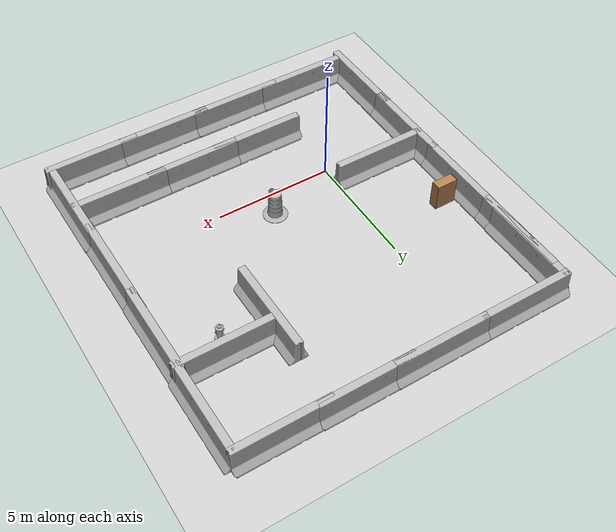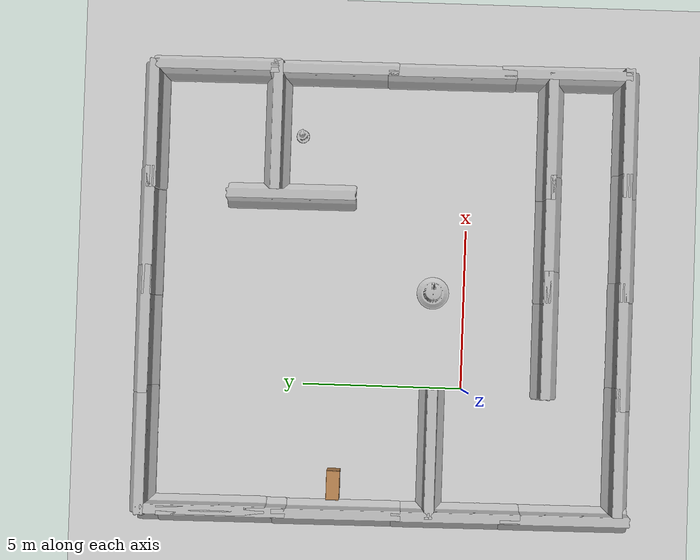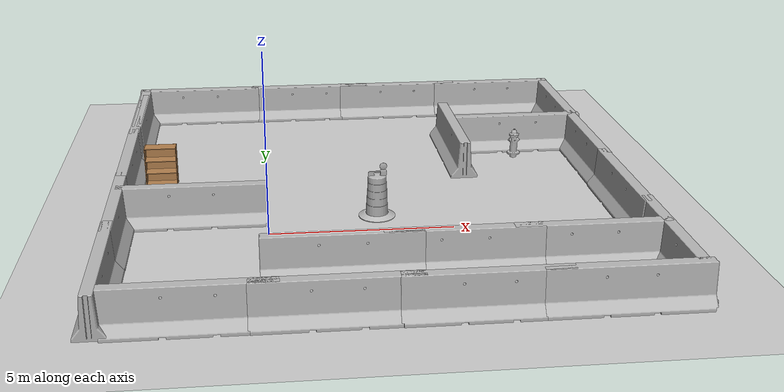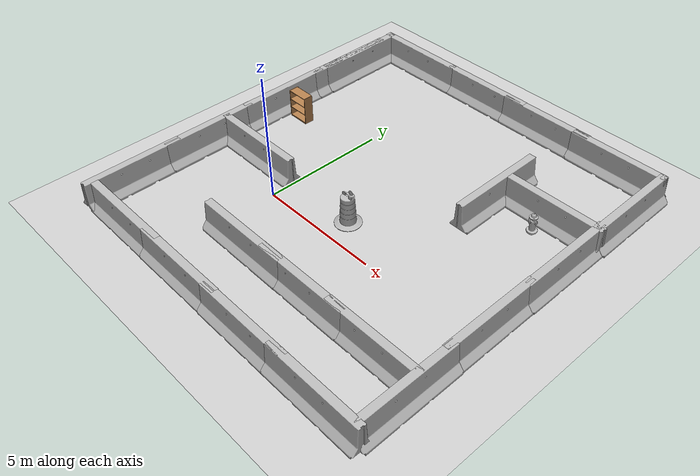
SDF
<sdf version="1.6">
 <world name="default">
  <light name="sun" type="directional">
   <pose>0 0 10 0 -0 0</pose>
   <diffuse>0.8 0.8 0.8 1</diffuse>
   <specular>0.1 0.1 0.1 1</specular>
   <attenuation>
    <range>1000</range>
    <constant>0.9</constant>
    <linear>0.01</linear>
    <quadratic>0.001</quadratic>
   </attenuation>
   <direction>-0.5 0.5 -1</direction>
  </light>
  <model name="ground_plane">
   <static>1</static>
   <link name="link">
    <collision name="collision">
     <geometry><plane><normal>0 0 1</normal><size>100 100</size></plane></geometry>
     <surface><friction><ode><mu>100</mu><mu2>50</mu2></ode></friction></surface>
    </collision>
    <visual name="visual">
     <cast_shadows>0</cast_shadows>
     <geometry><plane><normal>0 0 1</normal><size>100 100</size></plane></geometry>
     <material>
      <script><uri>file://media/materials/scripts/gazebo.material</uri><name>Gazebo/Grey</name></script>
     </material>
    </visual>
   </link>
  </model>
  <gravity>0 0 -9.8</gravity>
  <magnetic_field>6e-06 2.3e-05 -4.2e-05</magnetic_field>
  <atmosphere type="adiabatic"/>
  <physics name="default_physics" default="0" type="ode">
   <max_step_size>0.001</max_step_size>
   <real_time_factor>1</real_time_factor>
   <real_time_update_rate>1000</real_time_update_rate>
  </physics>
  <scene><ambient>0.4 0.4 0.4 1</ambient><background>0.7 0.7 0.7 1</background><shadows>1</shadows></scene>
  <spherical_coordinates>
   <surface_model>EARTH_WGS84</surface_model>
   <latitude_deg>0</latitude_deg>
   <longitude_deg>0</longitude_deg>
   <elevation>0</elevation>
   <heading_deg>0</heading_deg>
  </spherical_coordinates>
  <model name="jersey_barrier">
   <static>1</static>
   <link name="link">
    <visual name="visual">
     <geometry>
      <mesh><uri>model://jersey_barrier/meshes/jersey_barrier.dae</uri><scale>1 1 1</scale></mesh>
     </geometry>
    </visual>
    <collision name="upright">
     <pose>0 0 0.5715 0 -0 0</pose>
     <geometry><box><size>4.06542 0.3063 1.143</size></box></geometry>
    </collision>
    <collision name="base">
     <pose>0 0 0.032258 0 -0 0</pose>
     <geometry><box><size>4.06542 0.8107 0.064516</size></box></geometry>
    </collision>
    <collision name="base2">
     <pose>0 0 0.1 0 -0 0</pose>
     <geometry><box><size>4.06542 0.65 0.1</size></box></geometry>
    </collision>
    <collision name="base3">
     <pose>0 0 0.2 0 -0 0</pose>
     <geometry><box><size>4.06542 0.5 0.1</size></box></geometry>
    </collision>
    <collision name="left-angle">
     <pose>0 -0.224 0.2401 0.9 -0 0</pose>
     <geometry><box><size>4.06542 0.5 0.064516</size></box></geometry>
    </collision>
    <collision name="right-angle">
     <pose>0 0.224 0.2401 -0.9 0 0</pose>
     <geometry><box><size>4.06542 0.5 0.064516</size></box></geometry>
    </collision>
   </link>
   <pose>8.16618 -4.95482 0 0 -0 0</pose>
  </model>
  <model name="jersey_barrier_clone">
   <static>1</static>
   <link name="link">
    <visual name="visual">
     <geometry>
      <mesh><uri>model://jersey_barrier/meshes/jersey_barrier.dae</uri><scale>1 1 1</scale></mesh>
     </geometry>
    </visual>
    <collision name="upright">
     <pose>0 0 0.5715 0 -0 0</pose>
     <geometry><box><size>4.06542 0.3063 1.143</size></box></geometry>
    </collision>
    <collision name="base">
     <pose>0 0 0.032258 0 -0 0</pose>
     <geometry><box><size>4.06542 0.8107 0.064516</size></box></geometry>
    </collision>
    <collision name="base2">
     <pose>0 0 0.1 0 -0 0</pose>
     <geometry><box><size>4.06542 0.65 0.1</size></box></geometry>
    </collision>
    <collision name="base3">
     <pose>0 0 0.2 0 -0 0</pose>
     <geometry><box><size>4.06542 0.5 0.1</size></box></geometry>
    </collision>
    <collision name="left-angle">
     <pose>0 -0.224 0.2401 0.9 -0 0</pose>
     <geometry><box><size>4.06542 0.5 0.064516</size></box></geometry>
    </collision>
    <collision name="right-angle">
     <pose>0 0.224 0.2401 -0.9 0 0</pose>
     <geometry><box><size>4.06542 0.5 0.064516</size></box></geometry>
    </collision>
   </link>
   <pose>4.89491 -4.95424 0 0 -0 0</pose>
  </model>
  <model name="jersey_barrier_clone_0">
   <static>1</static>
   <link name="link">
    <visual name="visual">
     <geometry>
      <mesh><uri>model://jersey_barrier/meshes/jersey_barrier.dae</uri><scale>1 1 1</scale></mesh>
     </geometry>
    </visual>
    <collision name="upright">
     <pose>0 0 0.5715 0 -0 0</pose>
     <geometry><box><size>4.06542 0.3063 1.143</size></box></geometry>
    </collision>
    <collision name="base">
     <pose>0 0 0.032258 0 -0 0</pose>
     <geometry><box><size>4.06542 0.8107 0.064516</size></box></geometry>
    </collision>
    <collision name="base2">
     <pose>0 0 0.1 0 -0 0</pose>
     <geometry><box><size>4.06542 0.65 0.1</size></box></geometry>
    </collision>
    <collision name="base3">
     <pose>0 0 0.2 0 -0 0</pose>
     <geometry><box><size>4.06542 0.5 0.1</size></box></geometry>
    </collision>
    <collision name="left-angle">
     <pose>0 -0.224 0.2401 0.9 -0 0</pose>
     <geometry><box><size>4.06542 0.5 0.064516</size></box></geometry>
    </collision>
    <collision name="right-angle">
     <pose>0 0.224 0.2401 -0.9 0 0</pose>
     <geometry><box><size>4.06542 0.5 0.064516</size></box></geometry>
    </collision>
   </link>
   <pose>1.47754 -4.93619 0 0 -0 0</pose>
  </model>
  <model name="jersey_barrier_clone_1">
   <static>1</static>
   <link name="link">
    <visual name="visual">
     <geometry>
      <mesh><uri>model://jersey_barrier/meshes/jersey_barrier.dae</uri><scale>1 1 1</scale></mesh>
     </geometry>
    </visual>
    <collision name="upright">
     <pose>0 0 0.5715 0 -0 0</pose>
     <geometry><box><size>4.06542 0.3063 1.143</size></box></geometry>
    </collision>
    <collision name="base">
     <pose>0 0 0.032258 0 -0 0</pose>
     <geometry><box><size>4.06542 0.8107 0.064516</size></box></geometry>
    </collision>
    <collision name="base2">
     <pose>0 0 0.1 0 -0 0</pose>
     <geometry><box><size>4.06542 0.65 0.1</size></box></geometry>
    </collision>
    <collision name="base3">
     <pose>0 0 0.2 0 -0 0</pose>
     <geometry><box><size>4.06542 0.5 0.1</size></box></geometry>
    </collision>
    <collision name="left-angle">
     <pose>0 -0.224 0.2401 0.9 -0 0</pose>
     <geometry><box><size>4.06542 0.5 0.064516</size></box></geometry>
    </collision>
    <collision name="right-angle">
     <pose>0 0.224 0.2401 -0.9 0 0</pose>
     <geometry><box><size>4.06542 0.5 0.064516</size></box></geometry>
    </collision>
   </link>
   <pose>-1.80757 -4.92551 0 0 -0 0</pose>
  </model>
  <model name="jersey_barrier_clone_2">
   <static>1</static>
   <link name="link">
    <visual name="visual">
     <geometry>
      <mesh><uri>model://jersey_barrier/meshes/jersey_barrier.dae</uri><scale>1 1 1</scale></mesh>
     </geometry>
    </visual>
    <collision name="upright">
     <pose>0 0 0.5715 0 -0 0</pose>
     <geometry><box><size>4.06542 0.3063 1.143</size></box></geometry>
    </collision>
    <collision name="base">
     <pose>0 0 0.032258 0 -0 0</pose>
     <geometry><box><size>4.06542 0.8107 0.064516</size></box></geometry>
    </collision>
    <collision name="base2">
     <pose>0 0 0.1 0 -0 0</pose>
     <geometry><box><size>4.06542 0.65 0.1</size></box></geometry>
    </collision>
    <collision name="base3">
     <pose>0 0 0.2 0 -0 0</pose>
     <geometry><box><size>4.06542 0.5 0.1</size></box></geometry>
    </collision>
    <collision name="left-angle">
     <pose>0 -0.224 0.2401 0.9 -0 0</pose>
     <geometry><box><size>4.06542 0.5 0.064516</size></box></geometry>
    </collision>
    <collision name="right-angle">
     <pose>0 0.224 0.2401 -0.9 0 0</pose>
     <geometry><box><size>4.06542 0.5 0.064516</size></box></geometry>
    </collision>
   </link>
   <pose>-3.97047 -3.2892 0 0 -0 1.57745</pose>
  </model>
  <model name="jersey_barrier_clone_2_clone">
   <static>1</static>
   <link name="link">
    <visual name="visual">
     <geometry>
      <mesh><uri>model://jersey_barrier/meshes/jersey_barrier.dae</uri><scale>1 1 1</scale></mesh>
     </geometry>
    </visual>
    <collision name="upright">
     <pose>0 0 0.5715 0 -0 0</pose>
     <geometry><box><size>4.06542 0.3063 1.143</size></box></geometry>
    </collision>
    <collision name="base">
     <pose>0 0 0.032258 0 -0 0</pose>
     <geometry><box><size>4.06542 0.8107 0.064516</size></box></geometry>
    </collision>
    <collision name="base2">
     <pose>0 0 0.1 0 -0 0</pose>
     <geometry><box><size>4.06542 0.65 0.1</size></box></geometry>
    </collision>
    <collision name="base3">
     <pose>0 0 0.2 0 -0 0</pose>
     <geometry><box><size>4.06542 0.5 0.1</size></box></geometry>
    </collision>
    <collision name="left-angle">
     <pose>0 -0.224 0.2401 0.9 -0 0</pose>
     <geometry><box><size>4.06542 0.5 0.064516</size></box></geometry>
    </collision>
    <collision name="right-angle">
     <pose>0 0.224 0.2401 -0.9 0 0</pose>
     <geometry><box><size>4.06542 0.5 0.064516</size></box></geometry>
    </collision>
   </link>
   <pose>-3.98398 0.096046 0 0 -0 1.57745</pose>
  </model>
  <model name="jersey_barrier_clone_2_clone_0">
   <static>1</static>
   <link name="link">
    <visual name="visual">
     <geometry>
      <mesh><uri>model://jersey_barrier/meshes/jersey_barrier.dae</uri><scale>1 1 1</scale></mesh>
     </geometry>
    </visual>
    <collision name="upright">
     <pose>0 0 0.5715 0 -0 0</pose>
     <geometry><box><size>4.06542 0.3063 1.143</size></box></geometry>
    </collision>
    <collision name="base">
     <pose>0 0 0.032258 0 -0 0</pose>
     <geometry><box><size>4.06542 0.8107 0.064516</size></box></geometry>
    </collision>
    <collision name="base2">
     <pose>0 0 0.1 0 -0 0</pose>
     <geometry><box><size>4.06542 0.65 0.1</size></box></geometry>
    </collision>
    <collision name="base3">
     <pose>0 0 0.2 0 -0 0</pose>
     <geometry><box><size>4.06542 0.5 0.1</size></box></geometry>
    </collision>
    <collision name="left-angle">
     <pose>0 -0.224 0.2401 0.9 -0 0</pose>
     <geometry><box><size>4.06542 0.5 0.064516</size></box></geometry>
    </collision>
    <collision name="right-angle">
     <pose>0 0.224 0.2401 -0.9 0 0</pose>
     <geometry><box><size>4.06542 0.5 0.064516</size></box></geometry>
    </collision>
   </link>
   <pose>-3.99854 3.81891 0 0 -0 1.57745</pose>
  </model>
  <model name="jersey_barrier_clone_2_clone_1">
   <static>1</static>
   <link name="link">
    <visual name="visual">
     <geometry>
      <mesh><uri>model://jersey_barrier/meshes/jersey_barrier.dae</uri><scale>1 1 1</scale></mesh>
     </geometry>
    </visual>
    <collision name="upright">
     <pose>0 0 0.5715 0 -0 0</pose>
     <geometry><box><size>4.06542 0.3063 1.143</size></box></geometry>
    </collision>
    <collision name="base">
     <pose>0 0 0.032258 0 -0 0</pose>
     <geometry><box><size>4.06542 0.8107 0.064516</size></box></geometry>
    </collision>
    <collision name="base2">
     <pose>0 0 0.1 0 -0 0</pose>
     <geometry><box><size>4.06542 0.65 0.1</size></box></geometry>
    </collision>
    <collision name="base3">
     <pose>0 0 0.2 0 -0 0</pose>
     <geometry><box><size>4.06542 0.5 0.1</size></box></geometry>
    </collision>
    <collision name="left-angle">
     <pose>0 -0.224 0.2401 0.9 -0 0</pose>
     <geometry><box><size>4.06542 0.5 0.064516</size></box></geometry>
    </collision>
    <collision name="right-angle">
     <pose>0 0.224 0.2401 -0.9 0 0</pose>
     <geometry><box><size>4.06542 0.5 0.064516</size></box></geometry>
    </collision>
   </link>
   <pose>-4.00487 7.39825 0 0 -0 1.57745</pose>
  </model>
  <model name="jersey_barrier_clone_2_clone_2">
   <static>1</static>
   <link name="link">
    <visual name="visual">
     <geometry>
      <mesh><uri>model://jersey_barrier/meshes/jersey_barrier.dae</uri><scale>1 1 1</scale></mesh>
     </geometry>
    </visual>
    <collision name="upright">
     <pose>0 0 0.5715 0 -0 0</pose>
     <geometry><box><size>4.06542 0.3063 1.143</size></box></geometry>
    </collision>
    <collision name="base">
     <pose>0 0 0.032258 0 -0 0</pose>
     <geometry><box><size>4.06542 0.8107 0.064516</size></box></geometry>
    </collision>
    <collision name="base2">
     <pose>0 0 0.1 0 -0 0</pose>
     <geometry><box><size>4.06542 0.65 0.1</size></box></geometry>
    </collision>
    <collision name="base3">
     <pose>0 0 0.2 0 -0 0</pose>
     <geometry><box><size>4.06542 0.5 0.1</size></box></geometry>
    </collision>
    <collision name="left-angle">
     <pose>0 -0.224 0.2401 0.9 -0 0</pose>
     <geometry><box><size>4.06542 0.5 0.064516</size></box></geometry>
    </collision>
    <collision name="right-angle">
     <pose>0 0.224 0.2401 -0.9 0 0</pose>
     <geometry><box><size>4.06542 0.5 0.064516</size></box></geometry>
    </collision>
   </link>
   <pose>-3.98448 8.04289 0 0 -0 1.57745</pose>
  </model>
  <model name="jersey_barrier_clone_1_clone">
   <static>1</static>
   <link name="link">
    <visual name="visual">
     <geometry>
      <mesh><uri>model://jersey_barrier/meshes/jersey_barrier.dae</uri><scale>1 1 1</scale></mesh>
     </geometry>
    </visual>
    <collision name="upright">
     <pose>0 0 0.5715 0 -0 0</pose>
     <geometry><box><size>4.06542 0.3063 1.143</size></box></geometry>
    </collision>
    <collision name="base">
     <pose>0 0 0.032258 0 -0 0</pose>
     <geometry><box><size>4.06542 0.8107 0.064516</size></box></geometry>
    </collision>
    <collision name="base2">
     <pose>0 0 0.1 0 -0 0</pose>
     <geometry><box><size>4.06542 0.65 0.1</size></box></geometry>
    </collision>
    <collision name="base3">
     <pose>0 0 0.2 0 -0 0</pose>
     <geometry><box><size>4.06542 0.5 0.1</size></box></geometry>
    </collision>
    <collision name="left-angle">
     <pose>0 -0.224 0.2401 0.9 -0 0</pose>
     <geometry><box><size>4.06542 0.5 0.064516</size></box></geometry>
    </collision>
    <collision name="right-angle">
     <pose>0 0.224 0.2401 -0.9 0 0</pose>
     <geometry><box><size>4.06542 0.5 0.064516</size></box></geometry>
    </collision>
   </link>
   <pose>-2.16451 9.94196 0 0 -0 0</pose>
  </model>
  <model name="jersey_barrier_clone_1_clone_0">
   <static>1</static>
   <link name="link">
    <visual name="visual">
     <geometry>
      <mesh><uri>model://jersey_barrier/meshes/jersey_barrier.dae</uri><scale>1 1 1</scale></mesh>
     </geometry>
    </visual>
    <collision name="upright">
     <pose>0 0 0.5715 0 -0 0</pose>
     <geometry><box><size>4.06542 0.3063 1.143</size></box></geometry>
    </collision>
    <collision name="base">
     <pose>0 0 0.032258 0 -0 0</pose>
     <geometry><box><size>4.06542 0.8107 0.064516</size></box></geometry>
    </collision>
    <collision name="base2">
     <pose>0 0 0.1 0 -0 0</pose>
     <geometry><box><size>4.06542 0.65 0.1</size></box></geometry>
    </collision>
    <collision name="base3">
     <pose>0 0 0.2 0 -0 0</pose>
     <geometry><box><size>4.06542 0.5 0.1</size></box></geometry>
    </collision>
    <collision name="left-angle">
     <pose>0 -0.224 0.2401 0.9 -0 0</pose>
     <geometry><box><size>4.06542 0.5 0.064516</size></box></geometry>
    </collision>
    <collision name="right-angle">
     <pose>0 0.224 0.2401 -0.9 0 0</pose>
     <geometry><box><size>4.06542 0.5 0.064516</size></box></geometry>
    </collision>
   </link>
   <pose>1.60091 9.94605 0 0 -0 0</pose>
  </model>
  <model name="jersey_barrier_clone_1_clone_1">
   <static>1</static>
   <link name="link">
    <visual name="visual">
     <geometry>
      <mesh><uri>model://jersey_barrier/meshes/jersey_barrier.dae</uri><scale>1 1 1</scale></mesh>
     </geometry>
    </visual>
    <collision name="upright">
     <pose>0 0 0.5715 0 -0 0</pose>
     <geometry><box><size>4.06542 0.3063 1.143</size></box></geometry>
    </collision>
    <collision name="base">
     <pose>0 0 0.032258 0 -0 0</pose>
     <geometry><box><size>4.06542 0.8107 0.064516</size></box></geometry>
    </collision>
    <collision name="base2">
     <pose>0 0 0.1 0 -0 0</pose>
     <geometry><box><size>4.06542 0.65 0.1</size></box></geometry>
    </collision>
    <collision name="base3">
     <pose>0 0 0.2 0 -0 0</pose>
     <geometry><box><size>4.06542 0.5 0.1</size></box></geometry>
    </collision>
    <collision name="left-angle">
     <pose>0 -0.224 0.2401 0.9 -0 0</pose>
     <geometry><box><size>4.06542 0.5 0.064516</size></box></geometry>
    </collision>
    <collision name="right-angle">
     <pose>0 0.224 0.2401 -0.9 0 0</pose>
     <geometry><box><size>4.06542 0.5 0.064516</size></box></geometry>
    </collision>
   </link>
   <pose>4.68435 9.936 0 0 -0 0</pose>
  </model>
  <model name="jersey_barrier_clone_1_clone_2">
   <static>1</static>
   <link name="link">
    <visual name="visual">
     <geometry>
      <mesh><uri>model://jersey_barrier/meshes/jersey_barrier.dae</uri><scale>1 1 1</scale></mesh>
     </geometry>
    </visual>
    <collision name="upright">
     <pose>0 0 0.5715 0 -0 0</pose>
     <geometry><box><size>4.06542 0.3063 1.143</size></box></geometry>
    </collision>
    <collision name="base">
     <pose>0 0 0.032258 0 -0 0</pose>
     <geometry><box><size>4.06542 0.8107 0.064516</size></box></geometry>
    </collision>
    <collision name="base2">
     <pose>0 0 0.1 0 -0 0</pose>
     <geometry><box><size>4.06542 0.65 0.1</size></box></geometry>
    </collision>
    <collision name="base3">
     <pose>0 0 0.2 0 -0 0</pose>
     <geometry><box><size>4.06542 0.5 0.1</size></box></geometry>
    </collision>
    <collision name="left-angle">
     <pose>0 -0.224 0.2401 0.9 -0 0</pose>
     <geometry><box><size>4.06542 0.5 0.064516</size></box></geometry>
    </collision>
    <collision name="right-angle">
     <pose>0 0.224 0.2401 -0.9 0 0</pose>
     <geometry><box><size>4.06542 0.5 0.064516</size></box></geometry>
    </collision>
   </link>
   <pose>8.02814 9.90978 0 0 -0 0</pose>
  </model>
  <model name="jersey_barrier_clone_2_clone_2_clone">
   <static>1</static>
   <link name="link">
    <visual name="visual">
     <geometry>
      <mesh><uri>model://jersey_barrier/meshes/jersey_barrier.dae</uri><scale>1 1 1</scale></mesh>
     </geometry>
    </visual>
    <collision name="upright">
     <pose>0 0 0.5715 0 -0 0</pose>
     <geometry><box><size>4.06542 0.3063 1.143</size></box></geometry>
    </collision>
    <collision name="base">
     <pose>0 0 0.032258 0 -0 0</pose>
     <geometry><box><size>4.06542 0.8107 0.064516</size></box></geometry>
    </collision>
    <collision name="base2">
     <pose>0 0 0.1 0 -0 0</pose>
     <geometry><box><size>4.06542 0.65 0.1</size></box></geometry>
    </collision>
    <collision name="base3">
     <pose>0 0 0.2 0 -0 0</pose>
     <geometry><box><size>4.06542 0.5 0.1</size></box></geometry>
    </collision>
    <collision name="left-angle">
     <pose>0 -0.224 0.2401 0.9 -0 0</pose>
     <geometry><box><size>4.06542 0.5 0.064516</size></box></geometry>
    </collision>
    <collision name="right-angle">
     <pose>0 0.224 0.2401 -0.9 0 0</pose>
     <geometry><box><size>4.06542 0.5 0.064516</size></box></geometry>
    </collision>
   </link>
   <pose>9.9019 8.01874 0 0 -0 1.57745</pose>
  </model>
  <model name="jersey_barrier_clone_2_clone_2_clone_0">
   <static>1</static>
   <link name="link">
    <visual name="visual">
     <geometry>
      <mesh><uri>model://jersey_barrier/meshes/jersey_barrier.dae</uri><scale>1 1 1</scale></mesh>
     </geometry>
    </visual>
    <collision name="upright">
     <pose>0 0 0.5715 0 -0 0</pose>
     <geometry><box><size>4.06542 0.3063 1.143</size></box></geometry>
    </collision>
    <collision name="base">
     <pose>0 0 0.032258 0 -0 0</pose>
     <geometry><box><size>4.06542 0.8107 0.064516</size></box></geometry>
    </collision>
    <collision name="base2">
     <pose>0 0 0.1 0 -0 0</pose>
     <geometry><box><size>4.06542 0.65 0.1</size></box></geometry>
    </collision>
    <collision name="base3">
     <pose>0 0 0.2 0 -0 0</pose>
     <geometry><box><size>4.06542 0.5 0.1</size></box></geometry>
    </collision>
    <collision name="left-angle">
     <pose>0 -0.224 0.2401 0.9 -0 0</pose>
     <geometry><box><size>4.06542 0.5 0.064516</size></box></geometry>
    </collision>
    <collision name="right-angle">
     <pose>0 0.224 0.2401 -0.9 0 0</pose>
     <geometry><box><size>4.06542 0.5 0.064516</size></box></geometry>
    </collision>
   </link>
   <pose>9.92134 -3.02383 0 0 -0 1.57745</pose>
  </model>
  <model name="jersey_barrier_clone_2_clone_2_clone_1">
   <static>1</static>
   <link name="link">
    <visual name="visual">
     <geometry>
      <mesh><uri>model://jersey_barrier/meshes/jersey_barrier.dae</uri><scale>1 1 1</scale></mesh>
     </geometry>
    </visual>
    <collision name="upright">
     <pose>0 0 0.5715 0 -0 0</pose>
     <geometry><box><size>4.06542 0.3063 1.143</size></box></geometry>
    </collision>
    <collision name="base">
     <pose>0 0 0.032258 0 -0 0</pose>
     <geometry><box><size>4.06542 0.8107 0.064516</size></box></geometry>
    </collision>
    <collision name="base2">
     <pose>0 0 0.1 0 -0 0</pose>
     <geometry><box><size>4.06542 0.65 0.1</size></box></geometry>
    </collision>
    <collision name="base3">
     <pose>0 0 0.2 0 -0 0</pose>
     <geometry><box><size>4.06542 0.5 0.1</size></box></geometry>
    </collision>
    <collision name="left-angle">
     <pose>0 -0.224 0.2401 0.9 -0 0</pose>
     <geometry><box><size>4.06542 0.5 0.064516</size></box></geometry>
    </collision>
    <collision name="right-angle">
     <pose>0 0.224 0.2401 -0.9 0 0</pose>
     <geometry><box><size>4.06542 0.5 0.064516</size></box></geometry>
    </collision>
   </link>
   <pose>9.87506 0.593608 0 0 -0 1.57745</pose>
  </model>
  <model name="jersey_barrier_clone_2_clone_2_clone_2">
   <static>1</static>
   <link name="link">
    <visual name="visual">
     <geometry>
      <mesh><uri>model://jersey_barrier/meshes/jersey_barrier.dae</uri><scale>1 1 1</scale></mesh>
     </geometry>
    </visual>
    <collision name="upright">
     <pose>0 0 0.5715 0 -0 0</pose>
     <geometry><box><size>4.06542 0.3063 1.143</size></box></geometry>
    </collision>
    <collision name="base">
     <pose>0 0 0.032258 0 -0 0</pose>
     <geometry><box><size>4.06542 0.8107 0.064516</size></box></geometry>
    </collision>
    <collision name="base2">
     <pose>0 0 0.1 0 -0 0</pose>
     <geometry><box><size>4.06542 0.65 0.1</size></box></geometry>
    </collision>
    <collision name="base3">
     <pose>0 0 0.2 0 -0 0</pose>
     <geometry><box><size>4.06542 0.5 0.1</size></box></geometry>
    </collision>
    <collision name="left-angle">
     <pose>0 -0.224 0.2401 0.9 -0 0</pose>
     <geometry><box><size>4.06542 0.5 0.064516</size></box></geometry>
    </collision>
    <collision name="right-angle">
     <pose>0 0.224 0.2401 -0.9 0 0</pose>
     <geometry><box><size>4.06542 0.5 0.064516</size></box></geometry>
    </collision>
   </link>
   <pose>9.87368 4.28235 0 0 -0 1.57745</pose>
  </model>
  <model name="jersey_barrier_clone_1_clone_2_clone">
   <static>1</static>
   <link name="link">
    <visual name="visual">
     <geometry>
      <mesh><uri>model://jersey_barrier/meshes/jersey_barrier.dae</uri><scale>1 1 1</scale></mesh>
     </geometry>
    </visual>
    <collision name="upright">
     <pose>0 0 0.5715 0 -0 0</pose>
     <geometry><box><size>4.06542 0.3063 1.143</size></box></geometry>
    </collision>
    <collision name="base">
     <pose>0 0 0.032258 0 -0 0</pose>
     <geometry><box><size>4.06542 0.8107 0.064516</size></box></geometry>
    </collision>
    <collision name="base2">
     <pose>0 0 0.1 0 -0 0</pose>
     <geometry><box><size>4.06542 0.65 0.1</size></box></geometry>
    </collision>
    <collision name="base3">
     <pose>0 0 0.2 0 -0 0</pose>
     <geometry><box><size>4.06542 0.5 0.1</size></box></geometry>
    </collision>
    <collision name="left-angle">
     <pose>0 -0.224 0.2401 0.9 -0 0</pose>
     <geometry><box><size>4.06542 0.5 0.064516</size></box></geometry>
    </collision>
    <collision name="right-angle">
     <pose>0 0.224 0.2401 -0.9 0 0</pose>
     <geometry><box><size>4.06542 0.5 0.064516</size></box></geometry>
    </collision>
   </link>
   <pose>8.02688 -2.57029 0 0 -0 0</pose>
  </model>
  <model name="jersey_barrier_clone_1_clone_2_clone_0">
   <static>1</static>
   <link name="link">
    <visual name="visual">
     <geometry>
      <mesh><uri>model://jersey_barrier/meshes/jersey_barrier.dae</uri><scale>1 1 1</scale></mesh>
     </geometry>
    </visual>
    <collision name="upright">
     <pose>0 0 0.5715 0 -0 0</pose>
     <geometry><box><size>4.06542 0.3063 1.143</size></box></geometry>
    </collision>
    <collision name="base">
     <pose>0 0 0.032258 0 -0 0</pose>
     <geometry><box><size>4.06542 0.8107 0.064516</size></box></geometry>
    </collision>
    <collision name="base2">
     <pose>0 0 0.1 0 -0 0</pose>
     <geometry><box><size>4.06542 0.65 0.1</size></box></geometry>
    </collision>
    <collision name="base3">
     <pose>0 0 0.2 0 -0 0</pose>
     <geometry><box><size>4.06542 0.5 0.1</size></box></geometry>
    </collision>
    <collision name="left-angle">
     <pose>0 -0.224 0.2401 0.9 -0 0</pose>
     <geometry><box><size>4.06542 0.5 0.064516</size></box></geometry>
    </collision>
    <collision name="right-angle">
     <pose>0 0.224 0.2401 -0.9 0 0</pose>
     <geometry><box><size>4.06542 0.5 0.064516</size></box></geometry>
    </collision>
   </link>
   <pose>4.77959 -2.57991 0 0 -0 0</pose>
  </model>
  <model name="jersey_barrier_clone_1_clone_2_clone_1">
   <static>1</static>
   <link name="link">
    <visual name="visual">
     <geometry>
      <mesh><uri>model://jersey_barrier/meshes/jersey_barrier.dae</uri><scale>1 1 1</scale></mesh>
     </geometry>
    </visual>
    <collision name="upright">
     <pose>0 0 0.5715 0 -0 0</pose>
     <geometry><box><size>4.06542 0.3063 1.143</size></box></geometry>
    </collision>
    <collision name="base">
     <pose>0 0 0.032258 0 -0 0</pose>
     <geometry><box><size>4.06542 0.8107 0.064516</size></box></geometry>
    </collision>
    <collision name="base2">
     <pose>0 0 0.1 0 -0 0</pose>
     <geometry><box><size>4.06542 0.65 0.1</size></box></geometry>
    </collision>
    <collision name="base3">
     <pose>0 0 0.2 0 -0 0</pose>
     <geometry><box><size>4.06542 0.5 0.1</size></box></geometry>
    </collision>
    <collision name="left-angle">
     <pose>0 -0.224 0.2401 0.9 -0 0</pose>
     <geometry><box><size>4.06542 0.5 0.064516</size></box></geometry>
    </collision>
    <collision name="right-angle">
     <pose>0 0.224 0.2401 -0.9 0 0</pose>
     <geometry><box><size>4.06542 0.5 0.064516</size></box></geometry>
    </collision>
   </link>
   <pose>1.78581 -2.58594 0 0 -0 0</pose>
  </model>
  <model name="jersey_barrier_clone_1_clone_2_clone_2">
   <static>1</static>
   <link name="link">
    <visual name="visual">
     <geometry>
      <mesh><uri>model://jersey_barrier/meshes/jersey_barrier.dae</uri><scale>1 1 1</scale></mesh>
     </geometry>
    </visual>
    <collision name="upright">
     <pose>0 0 0.5715 0 -0 0</pose>
     <geometry><box><size>4.06542 0.3063 1.143</size></box></geometry>
    </collision>
    <collision name="base">
     <pose>0 0 0.032258 0 -0 0</pose>
     <geometry><box><size>4.06542 0.8107 0.064516</size></box></geometry>
    </collision>
    <collision name="base2">
     <pose>0 0 0.1 0 -0 0</pose>
     <geometry><box><size>4.06542 0.65 0.1</size></box></geometry>
    </collision>
    <collision name="base3">
     <pose>0 0 0.2 0 -0 0</pose>
     <geometry><box><size>4.06542 0.5 0.1</size></box></geometry>
    </collision>
    <collision name="left-angle">
     <pose>0 -0.224 0.2401 0.9 -0 0</pose>
     <geometry><box><size>4.06542 0.5 0.064516</size></box></geometry>
    </collision>
    <collision name="right-angle">
     <pose>0 0.224 0.2401 -0.9 0 0</pose>
     <geometry><box><size>4.06542 0.5 0.064516</size></box></geometry>
    </collision>
   </link>
   <pose>8.0887 6.04476 0 0 -0 0</pose>
  </model>
  <model name="jersey_barrier_clone_2_clone_0_clone">
   <static>1</static>
   <link name="link">
    <visual name="visual">
     <geometry>
      <mesh><uri>model://jersey_barrier/meshes/jersey_barrier.dae</uri><scale>1 1 1</scale></mesh>
     </geometry>
    </visual>
    <collision name="upright">
     <pose>0 0 0.5715 0 -0 0</pose>
     <geometry><box><size>4.06542 0.3063 1.143</size></box></geometry>
    </collision>
    <collision name="base">
     <pose>0 0 0.032258 0 -0 0</pose>
     <geometry><box><size>4.06542 0.8107 0.064516</size></box></geometry>
    </collision>
    <collision name="base2">
     <pose>0 0 0.1 0 -0 0</pose>
     <geometry><box><size>4.06542 0.65 0.1</size></box></geometry>
    </collision>
    <collision name="base3">
     <pose>0 0 0.2 0 -0 0</pose>
     <geometry><box><size>4.06542 0.5 0.1</size></box></geometry>
    </collision>
    <collision name="left-angle">
     <pose>0 -0.224 0.2401 0.9 -0 0</pose>
     <geometry><box><size>4.06542 0.5 0.064516</size></box></geometry>
    </collision>
    <collision name="right-angle">
     <pose>0 0.224 0.2401 -0.9 0 0</pose>
     <geometry><box><size>4.06542 0.5 0.064516</size></box></geometry>
    </collision>
   </link>
   <pose>5.93063 5.52809 0 0 -0 1.57745</pose>
  </model>
  <model name="jersey_barrier_clone_1_clone_0_clone">
   <static>1</static>
   <link name="link">
    <visual name="visual">
     <geometry>
      <mesh><uri>model://jersey_barrier/meshes/jersey_barrier.dae</uri><scale>1 1 1</scale></mesh>
     </geometry>
    </visual>
    <collision name="upright">
     <pose>0 0 0.5715 0 -0 0</pose>
     <geometry><box><size>4.06542 0.3063 1.143</size></box></geometry>
    </collision>
    <collision name="base">
     <pose>0 0 0.032258 0 -0 0</pose>
     <geometry><box><size>4.06542 0.8107 0.064516</size></box></geometry>
    </collision>
    <collision name="base2">
     <pose>0 0 0.1 0 -0 0</pose>
     <geometry><box><size>4.06542 0.65 0.1</size></box></geometry>
    </collision>
    <collision name="base3">
     <pose>0 0 0.2 0 -0 0</pose>
     <geometry><box><size>4.06542 0.5 0.1</size></box></geometry>
    </collision>
    <collision name="left-angle">
     <pose>0 -0.224 0.2401 0.9 -0 0</pose>
     <geometry><box><size>4.06542 0.5 0.064516</size></box></geometry>
    </collision>
    <collision name="right-angle">
     <pose>0 0.224 0.2401 -0.9 0 0</pose>
     <geometry><box><size>4.06542 0.5 0.064516</size></box></geometry>
    </collision>
   </link>
   <pose>-2.03079 0.925337 0 0 -0 0</pose>
  </model>
  <model name="Construction Barrel">
   <static>1</static>
   <link name="link">
    <inertial>
     <pose>0 0 0.4 0 -0 0</pose>
     <mass>500</mass>
     <inertia><ixx>51.2096</ixx><iyy>51.2096</iyy><izz>25</izz><ixy>0</ixy><ixz>0</ixz><iyz>0</iyz></inertia>
    </inertial>
    <collision name="collision">
     <geometry>
      <mesh><uri>model://construction_barrel/meshes/construction_barrel.dae</uri><scale>1 1 1</scale></mesh>
     </geometry>
    </collision>
    <visual name="visual">
     <geometry>
      <mesh><uri>model://construction_barrel/meshes/construction_barrel.dae</uri><scale>1 1 1</scale></mesh>
     </geometry>
    </visual>
   </link>
   <pose>3.00861 0.986871 0 0 -0 0</pose>
  </model>
  <model name="bookshelf">
   <static>1</static>
   <link name="link">
    <inertial><mass>1</mass></inertial>
    <collision name="back">
     <pose>0 0.005 0.6 0 -0 0</pose>
     <geometry><box><size>0.9 0.01 1.2</size></box></geometry>
    </collision>
    <visual name="visual1">
     <pose>0 0.005 0.6 0 -0 0</pose>
     <geometry><box><size>0.9 0.01 1.2</size></box></geometry>
     <material>
      <script><uri>file://media/materials/scripts/gazebo.material</uri><name>Gazebo/Wood</name></script>
     </material>
    </visual>
    <collision name="left_side">
     <pose>0.45 -0.195 0.6 0 -0 0</pose>
     <geometry><box><size>0.02 0.4 1.2</size></box></geometry>
    </collision>
    <visual name="visual2">
     <pose>0.45 -0.195 0.6 0 -0 0</pose>
     <geometry><box><size>0.02 0.4 1.2</size></box></geometry>
     <material>
      <script><uri>file://media/materials/scripts/gazebo.material</uri><name>Gazebo/Wood</name></script>
     </material>
    </visual>
    <collision name="right_side">
     <pose>-0.45 -0.195 0.6 0 -0 0</pose>
     <geometry><box><size>0.02 0.4 1.2</size></box></geometry>
    </collision>
    <visual name="visual3">
     <pose>-0.45 -0.195 0.6 0 -0 0</pose>
     <geometry><box><size>0.02 0.4 1.2</size></box></geometry>
     <material>
      <script><uri>file://media/materials/scripts/gazebo.material</uri><name>Gazebo/Wood</name></script>
     </material>
    </visual>
    <collision name="bottom">
     <pose>0 -0.195 0.03 0 -0 0</pose>
     <geometry><box><size>0.88 0.4 0.06</size></box></geometry>
    </collision>
    <visual name="visual4">
     <pose>0 -0.195 0.03 0 -0 0</pose>
     <geometry><box><size>0.88 0.4 0.06</size></box></geometry>
     <material>
      <script><uri>file://media/materials/scripts/gazebo.material</uri><name>Gazebo/Wood</name></script>
     </material>
    </visual>
    <collision name="top">
     <pose>0 -0.195 1.19 0 -0 0</pose>
     <geometry><box><size>0.88 0.4 0.02</size></box></geometry>
    </collision>
    <visual name="visual5">
     <pose>0 -0.195 1.19 0 -0 0</pose>
     <geometry><box><size>0.88 0.4 0.02</size></box></geometry>
     <material>
      <script><uri>file://media/materials/scripts/gazebo.material</uri><name>Gazebo/Wood</name></script>
     </material>
    </visual>
    <collision name="low_shelf">
     <pose>0 -0.195 0.43 0 -0 0</pose>
     <geometry><box><size>0.88 0.4 0.02</size></box></geometry>
    </collision>
    <visual name="visual6">
     <pose>0 -0.195 0.43 0 -0 0</pose>
     <geometry><box><size>0.88 0.4 0.02</size></box></geometry>
     <material>
      <script><uri>file://media/materials/scripts/gazebo.material</uri><name>Gazebo/Wood</name></script>
     </material>
    </visual>
    <collision name="high_shelf">
     <pose>0 -0.195 0.8 0 -0 0</pose>
     <geometry><box><size>0.88 0.4 0.02</size></box></geometry>
    </collision>
    <visual name="visual7">
     <pose>0 -0.195 0.8 0 -0 0</pose>
     <geometry><box><size>0.88 0.4 0.02</size></box></geometry>
     <material>
      <script><uri>file://media/materials/scripts/gazebo.material</uri><name>Gazebo/Wood</name></script>
     </material>
    </visual>
   </link>
   <pose>-3.07686 4.12858 0 0 -0 0</pose>
  </model>
  <model name="fire_hydrant">
   <static>1</static>
   <link name="link">
    <collision name="collision">
     <geometry><mesh><uri>model://fire_hydrant/meshes/fire_hydrant.dae</uri><scale>1 1 1</scale></mesh></geometry>
    </collision>
    <visual name="visual">
     <geometry><mesh><uri>model://fire_hydrant/meshes/fire_hydrant.dae</uri><scale>1 1 1</scale></mesh></geometry>
    </visual>
   </link>
   <pose>7.83684 5.25031 0 0 -0 0</pose>
  </model>
 </world>
</sdf>
